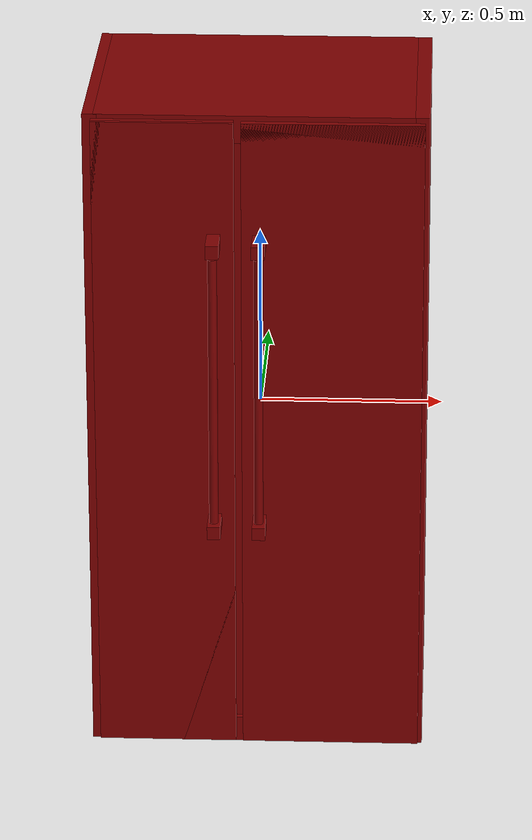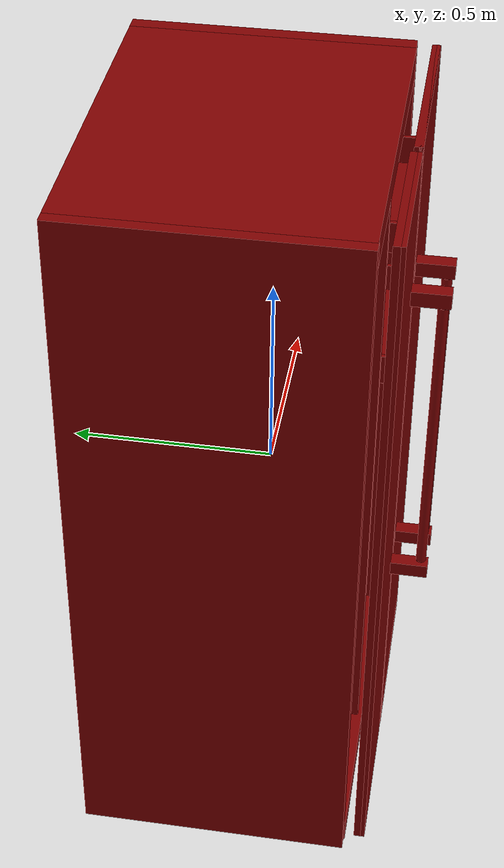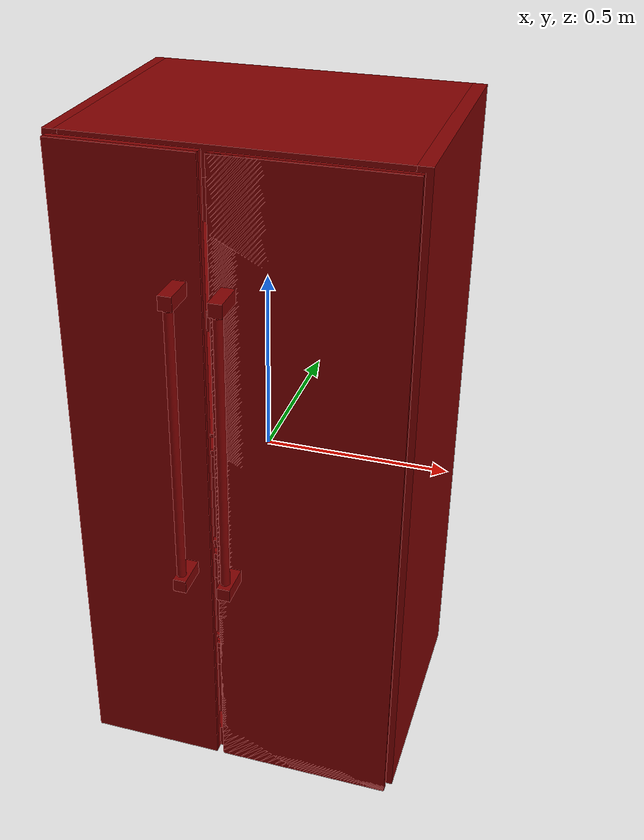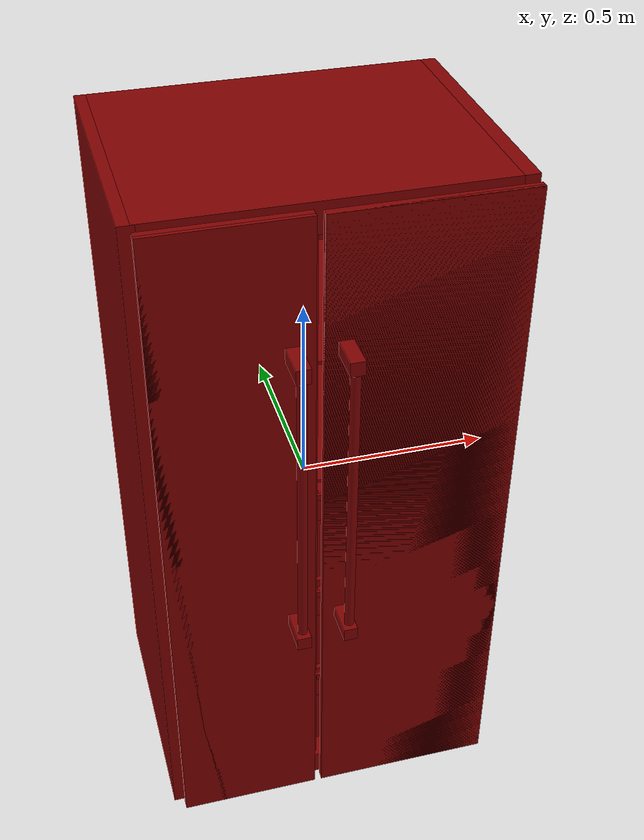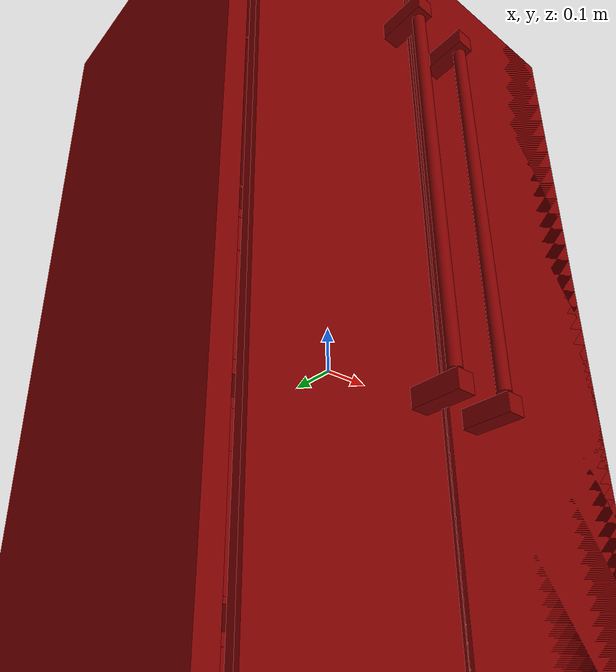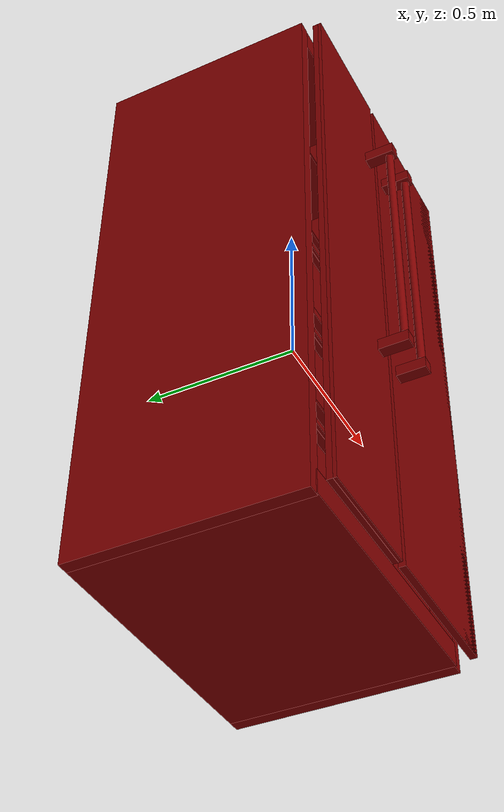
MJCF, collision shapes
<?xml version='1.0' encoding='UTF-8'?>
<mujoco model="model">
  <option timestep="0.002" gravity="0.0 0.0 -9.81"/>
  <compiler angle="radian"/>
  <asset>
    <mesh file="visuals/freezer_door.obj" name="freezer_door_vis"/>
    <mesh file="visuals/freezer_drawer0.obj" name="freezer_drawer0_vis"/>
    <mesh file="visuals/freezer_drawer1.obj" name="freezer_drawer1_vis"/>
    <mesh file="visuals/freezer_drawer2.obj" name="freezer_drawer2_vis"/>
    <mesh file="visuals/fridge_door.obj" name="fridge_door_vis"/>
    <mesh file="visuals/fridge_door_Clear.obj" name="fridge_door_Clear_vis"/>
    <mesh file="visuals/fridge_drawer0.obj" name="fridge_drawer0_vis"/>
    <mesh file="visuals/fridge_drawer1.obj" name="fridge_drawer1_vis"/>
    <mesh file="visuals/fridge_drawer2.obj" name="fridge_drawer2_vis"/>
    <mesh file="visuals/Body001.obj" name="Body001_vis"/>
    <mesh file="visuals/Body001_Clear.obj" name="Body001_Clear_vis"/>
    <texture file="visuals/T_BC001.png" name="Body001_material" type="2d"/>
    <material name="Body001_material" rgba="1 1 1 1.0" texture="Body001_material" shininess="0.141421377658844" specular="1"/>
    <texture file="visuals/T_BC001.png" name="freezer_door_material" type="2d"/>
    <material name="freezer_door_material" rgba="1 1 1 1.0" texture="freezer_door_material" shininess="0.141421377658844" specular="1"/>
    <texture file="visuals/T_BC001.png" name="freezer_drawer0_material" type="2d"/>
    <material name="freezer_drawer0_material" rgba="1 1 1 1.0" texture="freezer_drawer0_material" shininess="0.141421377658844" specular="0.3103448502657381"/>
    <texture file="visuals/T_BC001.png" name="freezer_drawer1_material" type="2d"/>
    <material name="freezer_drawer1_material" rgba="1 1 1 1.0" texture="freezer_drawer1_material" shininess="0.141421377658844" specular="0.3103448502657381"/>
    <texture file="visuals/T_BC001.png" name="freezer_drawer2_material" type="2d"/>
    <material name="freezer_drawer2_material" rgba="1 1 1 1.0" texture="freezer_drawer2_material" shininess="0.141421377658844" specular="0.3103448502657381"/>
    <texture file="visuals/T_BC001.png" name="fridge_door_material" type="2d"/>
    <material name="fridge_door_material" rgba="1 1 1 1.0" texture="fridge_door_material" shininess="0.141421377658844" specular="1"/>
    <material name="fridge_door_Clear_material" rgba="0.986527681350708 0.9570953845977783 1.0 0.699999988079071" shininess="0.5" specular="0.3103448502657381"/>
    <material name="fridge_drawer0_material" rgba="0.986527681350708 0.9570953845977783 1.0 0.699999988079071" shininess="0.5" specular="0.3103448502657381"/>
    <material name="fridge_drawer1_material" rgba="0.986527681350708 0.9570953845977783 1.0 0.699999988079071" shininess="0.5" specular="0.3103448502657381"/>
    <material name="fridge_drawer2_material" rgba="0.986527681350708 0.9570953845977783 1.0 0.699999988079071" shininess="0.5" specular="0.3103448502657381"/>
    <material name="Body001_Clear_material" rgba="0.986527681350708 0.9570953845977783 1.0 0.699999988079071" shininess="0.5" specular="0.3103448502657381"/>
  </asset>
  <default>
    <default class="visual">
      <geom conaffinity="0" contype="0" group="1" type="mesh"/>
    </default>
    <default class="collision">
      <geom group="0" rgba="0.5 0 0 0.5"/>
    </default>
    <default class="spawn">
      <geom group="0" rgba="1 1 1 0.5" contype="0" conaffinity="0"/>
      <site group="0" rgba="1 1 1 0.5"/>
    </default>
    <default class="region">
      <geom group="1" conaffinity="0" contype="0" rgba="0 1 0 0"/>
    </default>
  </default>
  <worldbody>
    <body>
      <body name="object">
        <geom mesh="Body001_vis" type="mesh" solimp="0.998 0.998 0.001" solref="0.001 1" friction="0.95 0.3 0.1" class="visual" material="Body001_material"/>
        <geom class="collision" type="box" pos="-0.44029645 0.07299042 -0.00000009" size="0.019229425117373466 0.3426029682159424 0.9220287799835205" quat="1.0 0.0 0.0 0.0"/>
        <geom class="collision" type="box" pos="0.44024442 0.07369876 0.00000025" size="0.019229387864470482 0.3418939709663391 0.922028660774231" quat="1.0 0.0 0.0 0.0"/>
        <geom class="collision" type="box" pos="-0.00433641 0.07345114 0.88344325" size="0.4262402057647705 0.34214186668395996 0.03858550265431404" quat="1.0 0.0 0.0 0.0"/>
        <geom class="collision" type="box" pos="-0.24455771 0.09774806 0.48021628" size="0.18603147566318512 0.3110361397266388 0.004523452837020159" quat="1.0 0.0 0.0 0.0"/>
        <geom class="collision" type="box" pos="-0.00433641 0.08965314 -0.54117344" size="0.4262450635433197 0.3152131736278534 0.0045233238488435745" quat="1.0 0.0 0.0 0.0"/>
        <geom class="collision" type="box" pos="-0.00433620 0.06589624 -0.21340600" size="0.42624837160110474 0.2894558608531952 0.01199058536440134" quat="1.0 0.0 0.0 0.0"/>
        <geom class="collision" type="box" pos="-0.00433641 0.07142990 -0.88656061" size="0.42624595761299133 0.34410560131073 0.03546379506587982" quat="1.0 0.0 0.0 0.0"/>
        <geom class="collision" type="box" pos="-0.00433623 0.38055932 -0.03835144" size="0.42616522312164307 0.034979600459337234 0.8835586905479431" quat="1.0 0.0 0.0 0.0"/>
        <geom class="collision" type="box" pos="-0.04721737 0.07061660 0.01399101" size="0.011308899149298668 0.33306506276130676 0.8603859543800354" quat="1.0 0.0 0.0 0.0"/>
        <geom class="collision" type="box" pos="-0.24455771 0.09774806 0.12775709" size="0.18603147566318512 0.3110361397266388 0.004523472860455513" quat="1.0 0.0 0.0 0.0"/>
        <geom class="collision" type="box" pos="0.19255321 0.09774806 0.48059241" size="0.22846174240112305 0.3110361397266388 0.0045232828706502914" quat="1.0 0.0 0.0 0.0"/>
        <geom class="collision" type="box" pos="0.19255325 0.09774806 0.12741088" size="0.22846178710460663 0.3110361397266388 0.00452342489734292" quat="1.0 0.0 0.0 0.0"/>
        <body name="freezer_door">
          <joint axis="0.0 0.0 -1.0" pos="-0.43582399 -0.30161461 0.00381469" limited="true" name="freezer_door_joint" range="0.0 1.5707963267948966" type="hinge" damping="1" frictionloss="1" armature=".01" stiffness="0.05"/>
          <geom mesh="freezer_door_vis" type="mesh" solimp="0.998 0.998 0.001" solref="0.001 1" friction="0.95 0.3 0.1" class="visual" material="freezer_door_material"/>
          <geom class="collision" type="box" pos="-0.24527323 -0.31037167 0.01176730" size="0.1886346936225891 0.013732707127928734 0.9080168008804321" quat="1.0 0.0 0.0 0.0"/>
          <geom class="collision" type="box" pos="-0.11005497 -0.36936346 0.59073408" size="0.017864476889371872 0.04676021635532379 0.018915072083473206" quat="1.0 0.0 0.0 0.0" name="freezer_door_handle_1"/>
          <geom class="collision" type="box" pos="-0.11005497 -0.36936346 -0.22138882" size="0.01786448061466217 0.046760112047195435 0.01828717440366745" quat="1.0 0.0 0.0 0.0" name="freezer_door_handle_2"/>
          <geom class="collision" type="cylinder" pos="-0.10999465 -0.39803231 0.18546447" size="0.012440330348908901 0.38117796182632446" quat="1.0 0.0 0.0 0.0" name="freezer_door_handle_main"/>
          <geom class="collision" type="box" pos="-0.24527323 -0.31887871 0.01176730" size="0.18863710761070251 0.005225942004472017 0.9080268740653992" quat="1.0 0.0 0.0 0.0" name="freezer_door_main"/>
        </body>
        <body name="freezer_drawer0">
          <geom class="region" name="reg_freezer_drawer0" type="box" pos="-0.23705668 0.053448465 -0.704650835" size="0.15583863 0.244004235 0.11912540500000002"/>
          <joint axis="0.0 -1.0 0.0" pos="-0.23718981 0.05080346 -0.71145843" limited="true" name="freezer_drawer0_joint" range="0.0 0.5" type="slide" damping="1" frictionloss="1" armature=".01" stiffness="0.05"/>
          <geom mesh="freezer_drawer0_vis" type="mesh" solimp="0.998 0.998 0.001" solref="0.001 1" friction="0.95 0.3 0.1" class="visual" material="freezer_drawer0_material"/>
          <geom class="collision" type="box" pos="-0.09542157 -0.20951826 -0.62140523" size="0.030655868351459503 0.004229157231748104 0.04130857065320015" quat="1.0 0.0 0.0 0.0"/>
          <geom class="collision" type="box" pos="-0.37635614 -0.20951823 -0.62140523" size="0.03326001390814781 0.004229180049151182 0.04130863770842552" quat="1.0 0.0 0.0 0.0"/>
          <geom class="collision" type="box" pos="-0.23719075 -0.20951826 -0.75273721" size="0.17199008166790009 0.004229174926877022 0.09350917488336563" quat="1.0 0.0 0.0 0.0"/>
          <geom class="collision" type="box" pos="-0.23611471 -0.21029234 -0.58579402" size="0.17124305665493011 0.005002995487302542 0.008780749514698982" quat="1.0 0.0 0.0 0.0"/>
          <geom class="collision" type="box" pos="-0.40550233 0.05511924 -0.71049301" size="0.004421782214194536 0.26027509570121765 0.13347020745277405" quat="1.0 0.0 0.0 0.0"/>
          <geom class="collision" type="box" pos="-0.06888629 0.05443063 -0.71049301" size="0.004412725567817688 0.26016613841056824 0.13347002863883972" quat="1.0 0.0 0.0 0.0"/>
          <geom class="collision" type="box" pos="-0.23730394 0.05431512 -0.84074532" size="0.17213794589042664 0.2599739730358124 0.005510554648935795" quat="1.0 0.0 0.0 0.0"/>
          <geom class="collision" type="box" pos="-0.23557426 0.31103730 -0.71152966" size="0.1717817485332489 0.004624445457011461 0.13243302702903748" quat="1.0 0.0 0.0 0.0"/>
        </body>
        <body name="freezer_drawer1">
          <geom class="region" name="reg_freezer_drawer1" type="box" pos="-0.237281125 0.04942196 -0.39137205500000005" size="0.155313595 0.24492116000000003 0.12853738500000003"/>
          <joint axis="0.0 -1.0 0.0" pos="-0.23821859 0.05080346 -0.39431255" limited="true" name="freezer_drawer1_joint" range="0.0 0.5" type="slide" damping="1" frictionloss="1" armature=".01" stiffness="0.05"/>
          <geom mesh="freezer_drawer1_vis" type="mesh" solimp="0.998 0.998 0.001" solref="0.001 1" friction="0.95 0.3 0.1" class="visual" material="freezer_drawer1_material"/>
          <geom class="collision" type="box" pos="-0.23814030 0.30971357 -0.39571516" size="0.1725112348794937 0.006035050842911005 0.1380944699048996" quat="1.0 0.0 0.0 0.0"/>
          <geom class="collision" type="box" pos="-0.23916279 0.04564585 -0.53031598" size="0.1713675558567047 0.2571668326854706 0.0035026909317821264" quat="1.0 0.0 0.0 0.0"/>
          <geom class="collision" type="box" pos="-0.06971696 0.04875225 -0.39297255" size="0.004610856994986534 0.25452926754951477 0.13742603361606598" quat="1.0 0.0 0.0 0.0"/>
          <geom class="collision" type="box" pos="-0.40664495 0.04854984 -0.39297255" size="0.004535562824457884 0.25432777404785156 0.1374264806509018" quat="1.0 0.0 0.0 0.0"/>
          <geom class="collision" type="box" pos="-0.23776211 -0.20957890 -0.26431818" size="0.17344792187213898 0.004289875738322735 0.008780826814472675" quat="1.0 0.0 0.0 0.0"/>
          <geom class="collision" type="box" pos="-0.23776211 -0.20951826 -0.43578051" size="0.17344792187213898 0.00422922195866704 0.09802980720996857" quat="1.0 0.0 0.0 0.0"/>
          <geom class="collision" type="box" pos="-0.37907924 -0.20951826 -0.29992943" size="0.032130833715200424 0.004229207988828421 0.041309528052806854" quat="1.0 0.0 0.0 0.0"/>
          <geom class="collision" type="box" pos="-0.09779884 -0.20951826 -0.29992943" size="0.032130833715200424 0.0042292214930057526 0.04130959510803223" quat="1.0 0.0 0.0 0.0"/>
        </body>
        <body name="freezer_drawer2">
          <geom class="region" name="reg_freezer_drawer2" type="box" pos="-0.237281125 0.04942196 -0.054407925" size="0.155313595 0.24492116000000003 0.128537385"/>
          <joint axis="0.0 -1.0 0.0" pos="-0.23821859 0.05080346 -0.05734842" limited="true" name="freezer_drawer2_joint" range="0.0 0.5" type="slide" damping="1" frictionloss="1" armature=".01" stiffness="0.05"/>
          <geom mesh="freezer_drawer2_vis" type="mesh" solimp="0.998 0.998 0.001" solref="0.001 1" friction="0.95 0.3 0.1" class="visual" material="freezer_drawer2_material"/>
          <geom class="collision" type="box" pos="-0.23814030 0.30971357 -0.05875103" size="0.1725112348794937 0.006035119295120239 0.13809555768966675" quat="1.0 0.0 0.0 0.0"/>
          <geom class="collision" type="box" pos="-0.23916279 0.04564585 -0.19335185" size="0.1713675558567047 0.25716903805732727 0.0035027251578867435" quat="1.0 0.0 0.0 0.0"/>
          <geom class="collision" type="box" pos="-0.06971696 0.04875225 -0.05600841" size="0.004610856994986534 0.25453147292137146 0.13742712140083313" quat="1.0 0.0 0.0 0.0"/>
          <geom class="collision" type="box" pos="-0.40664495 0.04854984 -0.05600841" size="0.004535562824457884 0.25432997941970825 0.13742756843566895" quat="1.0 0.0 0.0 0.0"/>
          <geom class="collision" type="box" pos="-0.23776211 -0.20957890 0.07264595" size="0.17344792187213898 0.004289910197257996 0.008780894801020622" quat="1.0 0.0 0.0 0.0"/>
          <geom class="collision" type="box" pos="-0.23776211 -0.20951826 -0.09881638" size="0.17344792187213898 0.004229256417602301 0.09803090244531631" quat="1.0 0.0 0.0 0.0"/>
          <geom class="collision" type="box" pos="-0.37907924 -0.20951826 0.03703470" size="0.032130833715200424 0.004229242447763681 0.04131007567048073" quat="1.0 0.0 0.0 0.0"/>
          <geom class="collision" type="box" pos="-0.09779884 -0.20951826 0.03703470" size="0.032130833715200424 0.004229255486279726 0.0413101427257061" quat="1.0 0.0 0.0 0.0"/>
        </body>
        <body name="fridge_door">
          <joint axis="0.0 0.0 1.0" pos="0.43607892 -0.30210802 0.00381171" limited="true" name="fridge_door_joint" range="0.0 1.5707963267948966" type="hinge" damping="1" frictionloss="1" armature=".01" stiffness="0.05"/>
          <geom mesh="fridge_door_vis" type="mesh" solimp="0.998 0.998 0.001" solref="0.001 1" friction="0.95 0.3 0.1" class="visual" material="fridge_door_material"/>
          <geom class="collision" type="box" pos="0.20815335 -0.30797792 0.28864778" size="0.19955861568450928 0.0032243402674794197 0.03886110335588455" quat="1.0 0.0 0.0 0.0"/>
          <geom class="collision" type="box" pos="0.40373557 -0.25640343 0.65912087" size="0.005122740287333727 0.054292209446430206 0.038861196488142014" quat="1.0 0.0 0.0 0.0"/>
          <geom class="collision" type="box" pos="0.20866227 -0.20532571 0.65912087" size="0.2001325637102127 0.003224362852051854 0.038861289620399475" quat="1.0 0.0 0.0 0.0"/>
          <geom class="collision" type="box" pos="0.01252901 -0.25640343 0.65912087" size="0.005122786853462458 0.05429258570075035 0.03886138275265694" quat="1.0 0.0 0.0 0.0"/>
          <geom class="collision" type="box" pos="0.20817603 -0.25640343 0.62448837" size="0.20027346909046173 0.054292768239974976 0.0034381297882646322" quat="1.0 0.0 0.0 0.0"/>
          <geom class="collision" type="box" pos="0.20787233 -0.25640349 0.25308563" size="0.2000824213027954 0.054293155670166016 0.0034381533041596413" quat="1.0 0.0 0.0 0.0"/>
          <geom class="collision" type="box" pos="0.01291248 -0.25640343 0.28851332" size="0.005122868809849024 0.05429333820939064 0.03886175900697708" quat="1.0 0.0 0.0 0.0"/>
          <geom class="collision" type="box" pos="0.20846749 -0.20532571 0.28851332" size="0.19956250488758087 0.0032244313042610884 0.03886185213923454" quat="1.0 0.0 0.0 0.0"/>
          <geom class="collision" type="box" pos="0.40296249 -0.25640343 0.28851332" size="0.005122914910316467 0.054293710738420486 0.038861945271492004" quat="1.0 0.0 0.0 0.0"/>
          <geom class="collision" type="box" pos="0.20815335 -0.30827460 0.65963937" size="0.19956155121326447 0.0032243402674794197 0.03886110335588455" quat="1.0 0.0 0.0 0.0"/>
          <geom class="collision" type="box" pos="0.20551263 -0.31409335 0.01176548" size="0.24239735305309296 0.010585621930658817 0.9080493450164795" quat="1.0 0.0 0.0 0.0"/>
          <geom class="collision" type="box" pos="0.01142187 -0.36862108 0.58999719" size="0.017865004017949104 0.0467604361474514 0.01799345202744007" quat="1.0 0.0 0.0 0.0" name="fridge_door_handle_1"/>
          <geom class="collision" type="box" pos="0.01142187 -0.36862108 -0.22199521" size="0.017865007743239403 0.046760331839323044 0.017993396148085594" quat="1.0 0.0 0.0 0.0" name="fridge_door_handle_2"/>
          <geom class="collision" type="cylinder" pos="0.01148219 -0.39728993 0.18515198" size="0.012440330348908901 0.38117796182632446" quat="1.0 0.0 0.0 0.0" name="fridge_door_handle_main"/>
          <geom class="collision" type="box" pos="0.20551263 -0.31973300 0.01176548" size="0.24239735305309296 0.0049459729343652725 0.9080493450164795" quat="1.0 0.0 0.0 0.0" name="fridge_door_main"/>
          <body name="fridge_door_Clear">
            <geom mesh="fridge_door_Clear_vis" type="mesh" solimp="0.998 0.998 0.001" solref="0.001 1" friction="0.95 0.3 0.1" class="visual" material="fridge_door_Clear_material"/>
            <geom class="collision" type="box" pos="0.20815335 -0.30797792 0.28864778" size="0.19955861568450928 0.0032243402674794197 0.03886110335588455" quat="1.0 0.0 0.0 0.0"/>
            <geom class="collision" type="box" pos="0.40373557 -0.25640343 0.65912087" size="0.005122740287333727 0.054292209446430206 0.038861196488142014" quat="1.0 0.0 0.0 0.0"/>
            <geom class="collision" type="box" pos="0.20866227 -0.20532571 0.65912087" size="0.2001325637102127 0.003224362852051854 0.038861289620399475" quat="1.0 0.0 0.0 0.0"/>
            <geom class="collision" type="box" pos="0.01252901 -0.25640343 0.65912087" size="0.005122786853462458 0.05429258570075035 0.03886138275265694" quat="1.0 0.0 0.0 0.0"/>
            <geom class="collision" type="box" pos="0.20817603 -0.25640343 0.62448837" size="0.20027346909046173 0.054292768239974976 0.0034381297882646322" quat="1.0 0.0 0.0 0.0"/>
            <geom class="collision" type="box" pos="0.20787233 -0.25640349 0.25308563" size="0.2000824213027954 0.054293155670166016 0.0034381533041596413" quat="1.0 0.0 0.0 0.0"/>
            <geom class="collision" type="box" pos="0.01291248 -0.25640343 0.28851332" size="0.005122868809849024 0.05429333820939064 0.03886175900697708" quat="1.0 0.0 0.0 0.0"/>
            <geom class="collision" type="box" pos="0.20846749 -0.20532571 0.28851332" size="0.19956250488758087 0.0032244313042610884 0.03886185213923454" quat="1.0 0.0 0.0 0.0"/>
            <geom class="collision" type="box" pos="0.40296249 -0.25640343 0.28851332" size="0.005122914910316467 0.054293710738420486 0.038861945271492004" quat="1.0 0.0 0.0 0.0"/>
            <geom class="collision" type="box" pos="0.20815335 -0.30827460 0.65963937" size="0.19956155121326447 0.0032243402674794197 0.03886110335588455" quat="1.0 0.0 0.0 0.0"/>
          </body>
        </body>
        <body name="fridge_drawer0">
          <geom class="region" name="reg_fridge_drawer0" type="box" pos="0.194406055 0.053448465 -0.704650835" size="0.201015185 0.244004235 0.11912540500000002"/>
          <joint axis="0.0 -1.0 0.0" pos="0.19427289 0.05080346 -0.71145843" limited="true" name="fridge_drawer0_joint" range="0.0 0.5" type="slide" damping="1" frictionloss="1" armature=".01" stiffness="0.05"/>
          <geom mesh="fridge_drawer0_vis" type="mesh" solimp="0.998 0.998 0.001" solref="0.001 1" friction="0.95 0.3 0.1" class="visual" material="fridge_drawer0_material"/>
          <geom class="collision" type="box" pos="0.38121768 -0.20951826 -0.62140523" size="0.030655866488814354 0.004229260142892599 0.04131020978093147" quat="1.0 0.0 0.0 0.0"/>
          <geom class="collision" type="box" pos="0.00993004 -0.20951823 -0.62140523" size="0.03326001390814781 0.00422928249463439 0.041310280561447144" quat="1.0 0.0 0.0 0.0"/>
          <geom class="collision" type="box" pos="0.19427197 -0.20951826 -0.75273721" size="0.21716661751270294 0.0042292773723602295 0.09351245313882828" quat="1.0 0.0 0.0 0.0"/>
          <geom class="collision" type="box" pos="0.19534801 -0.21029234 -0.58579402" size="0.21641959249973297 0.005003200378268957 0.008780954405665398" quat="1.0 0.0 0.0 0.0"/>
          <geom class="collision" type="box" pos="-0.01921615 0.05511924 -0.71049301" size="0.004421780351549387 0.26028165221214294 0.1334734857082367" quat="1.0 0.0 0.0 0.0"/>
          <geom class="collision" type="box" pos="0.40775295 0.05443063 -0.71049301" size="0.004412724170833826 0.2601727247238159 0.13347330689430237" quat="1.0 0.0 0.0 0.0"/>
          <geom class="collision" type="box" pos="0.19415878 0.05431512 -0.84074532" size="0.2173144668340683 0.25998055934906006 0.00551075953990221" quat="1.0 0.0 0.0 0.0"/>
          <geom class="collision" type="box" pos="0.19588846 0.31103730 -0.71152966" size="0.21695828437805176 0.004624547902494669 0.13243630528450012" quat="1.0 0.0 0.0 0.0"/>
        </body>
        <body name="fridge_drawer1">
          <geom class="region" name="reg_fridge_drawer1" type="box" pos="0.19418158500000002 0.04942196 -0.39137205500000005" size="0.200490125 0.24492116000000003 0.12853738500000003"/>
          <joint axis="0.0 -1.0 0.0" pos="0.19324412 0.05080346 -0.39431255" limited="true" name="fridge_drawer1_joint" range="0.0 0.5" type="slide" damping="1" frictionloss="1" armature=".01" stiffness="0.05"/>
          <geom mesh="fridge_drawer1_vis" type="mesh" solimp="0.998 0.998 0.001" solref="0.001 1" friction="0.95 0.3 0.1" class="visual" material="fridge_drawer1_material"/>
          <geom class="collision" type="box" pos="0.19332242 0.30971357 -0.39571516" size="0.21768775582313538 0.00603525573387742 0.13809774816036224" quat="1.0 0.0 0.0 0.0"/>
          <geom class="collision" type="box" pos="0.19229993 0.04564585 -0.53031598" size="0.21654409170150757 0.2571733891963959 0.003502793377265334" quat="1.0 0.0 0.0 0.0"/>
          <geom class="collision" type="box" pos="0.40692230 0.04875225 -0.39297255" size="0.004610855598002672 0.25453582406044006 0.13742931187152863" quat="1.0 0.0 0.0 0.0"/>
          <geom class="collision" type="box" pos="-0.02035878 0.04854984 -0.39297255" size="0.004535564221441746 0.25433433055877686 0.13742975890636444" quat="1.0 0.0 0.0 0.0"/>
          <geom class="collision" type="box" pos="0.19370061 -0.20957890 -0.26431818" size="0.21862444281578064 0.0042899781838059425 0.00878103170543909" quat="1.0 0.0 0.0 0.0"/>
          <geom class="collision" type="box" pos="0.19370061 -0.20951826 -0.43578051" size="0.21862444281578064 0.004229324404150248 0.09803309291601181" quat="1.0 0.0 0.0 0.0"/>
          <geom class="collision" type="box" pos="0.00720695 -0.20951826 -0.29992943" size="0.032130829989910126 0.004229310434311628 0.04131116718053818" quat="1.0 0.0 0.0 0.0"/>
          <geom class="collision" type="box" pos="0.37884040 -0.20951826 -0.29992943" size="0.032130833715200424 0.00422932393848896 0.04131123796105385" quat="1.0 0.0 0.0 0.0"/>
        </body>
        <body name="fridge_drawer2">
          <geom class="region" name="reg_fridge_drawer2" type="box" pos="0.19418158500000002 0.04942196 -0.054407925" size="0.200490125 0.24492116000000003 0.128537385"/>
          <joint axis="0.0 -1.0 0.0" pos="0.19324412 0.05080346 -0.05734842" limited="true" name="fridge_drawer2_joint" range="0.0 0.5" type="slide" damping="1" frictionloss="1" armature=".01" stiffness="0.05"/>
          <geom mesh="fridge_drawer2_vis" type="mesh" solimp="0.998 0.998 0.001" solref="0.001 1" friction="0.95 0.3 0.1" class="visual" material="fridge_drawer2_material"/>
          <geom class="collision" type="box" pos="0.19332242 0.30971357 -0.05875103" size="0.21768775582313538 0.006035324186086655 0.1380988359451294" quat="1.0 0.0 0.0 0.0"/>
          <geom class="collision" type="box" pos="0.19229993 0.04564585 -0.19335185" size="0.21654409170150757 0.25717559456825256 0.0035028276033699512" quat="1.0 0.0 0.0 0.0"/>
          <geom class="collision" type="box" pos="0.40692230 0.04875225 -0.05600841" size="0.004610855598002672 0.25453802943229675 0.13743039965629578" quat="1.0 0.0 0.0 0.0"/>
          <geom class="collision" type="box" pos="-0.02035878 0.04854984 -0.05600841" size="0.004535564221441746 0.25433653593063354 0.1374308466911316" quat="1.0 0.0 0.0 0.0"/>
          <geom class="collision" type="box" pos="0.19370061 -0.20957890 0.07264595" size="0.21862444281578064 0.004290012642741203 0.008781099691987038" quat="1.0 0.0 0.0 0.0"/>
          <geom class="collision" type="box" pos="0.19370061 -0.20951826 -0.09881638" size="0.21862444281578064 0.004229358863085508 0.09803418070077896" quat="1.0 0.0 0.0 0.0"/>
          <geom class="collision" type="box" pos="0.00720695 -0.20951826 0.03703470" size="0.032130829989910126 0.004229344893246889 0.04131171479821205" quat="1.0 0.0 0.0 0.0"/>
          <geom class="collision" type="box" pos="0.37884040 -0.20951826 0.03703470" size="0.032130833715200424 0.004229357931762934 0.041311781853437424" quat="1.0 0.0 0.0 0.0"/>
        </body>
        <body name="Body001_Clear">
          <geom mesh="Body001_Clear_vis" type="mesh" solimp="0.998 0.998 0.001" solref="0.001 1" friction="0.95 0.3 0.1" class="visual" material="Body001_Clear_material"/>
          <geom class="collision" type="box" pos="0.19255321 0.09774806 0.48059241" size="0.22846174240112305 0.3110361397266388 0.0045232828706502914" quat="1.0 0.0 0.0 0.0"/>
          <geom class="collision" type="box" pos="0.19255325 0.09774806 0.12741088" size="0.22846178710460663 0.3110361397266388 0.00452342489734292" quat="1.0 0.0 0.0 0.0"/>
        </body>
        <geom class="region" name="reg_freezer_shelf0" type="box" pos="-0.23947380000000001 0.07577905500000001 0.303067075" size="0.17634095 0.264121925 0.16288624499999999"/>
        <geom class="region" name="reg_freezer_shelf1" type="box" pos="-0.23947380000000001 0.07577905500000001 0.666245295" size="0.17634095 0.264121925 0.17270202500000004"/>
        <geom class="region" name="reg_fridge_shelf0" type="box" pos="0.193035075 0.08013421000000001 0.30343562" size="0.22326584500000002 0.25995122000000004 0.16343840999999998"/>
        <geom class="region" name="reg_fridge_shelf1" type="box" pos="0.193035075 0.08013421000000001 0.6653561299999999" size="0.22326584500000002 0.25995122000000004 0.17168307"/>
        <geom class="region" name="reg_main" type="box" pos="-1.830000000008214e-06 0.04542838000000002 1.299999999870849e-07" size="0.46052415 0.37110771 0.9230289"/>
      </body>
    </body>
  </worldbody>
  <actuator>
    <motor name="freezer_door_joint_actuator" joint="freezer_door_joint" gear="50"/>
    <motor name="freezer_drawer0_joint_actuator" joint="freezer_drawer0_joint" gear="50"/>
    <motor name="freezer_drawer1_joint_actuator" joint="freezer_drawer1_joint" gear="50"/>
    <motor name="freezer_drawer2_joint_actuator" joint="freezer_drawer2_joint" gear="50"/>
    <motor name="fridge_door_joint_actuator" joint="fridge_door_joint" gear="50"/>
    <motor name="fridge_drawer0_joint_actuator" joint="fridge_drawer0_joint" gear="50"/>
    <motor name="fridge_drawer1_joint_actuator" joint="fridge_drawer1_joint" gear="50"/>
    <motor name="fridge_drawer2_joint_actuator" joint="fridge_drawer2_joint" gear="50"/>
  </actuator>
</mujoco>
